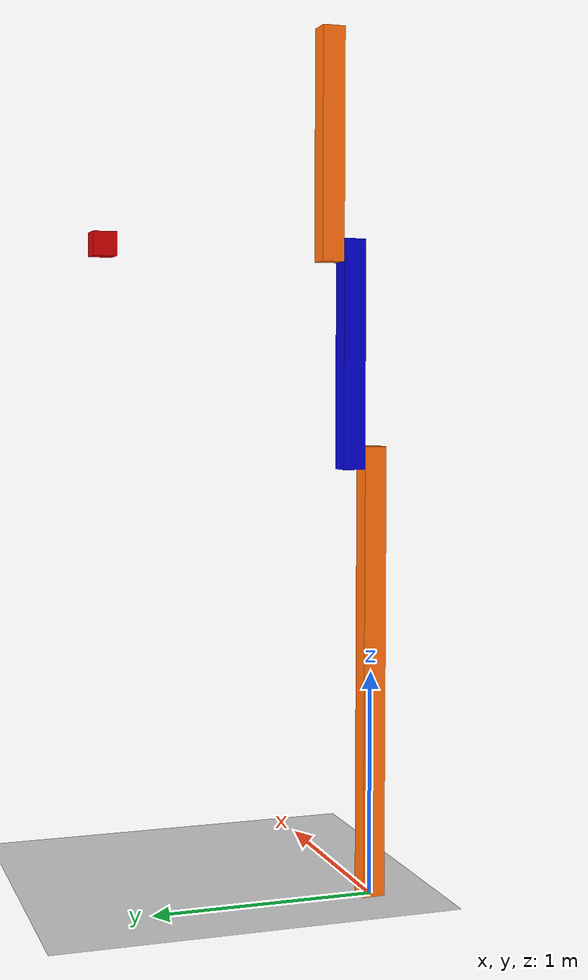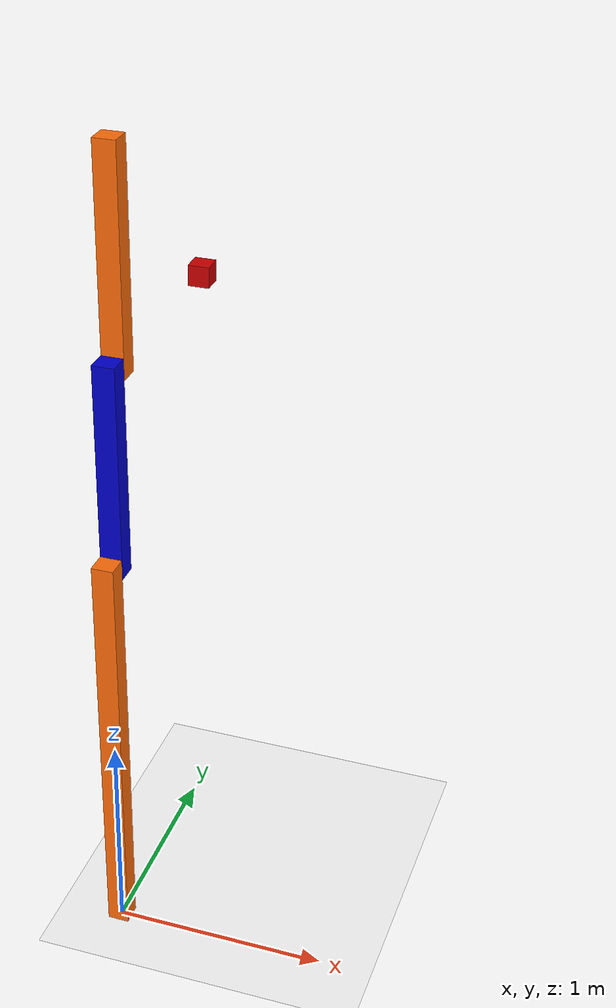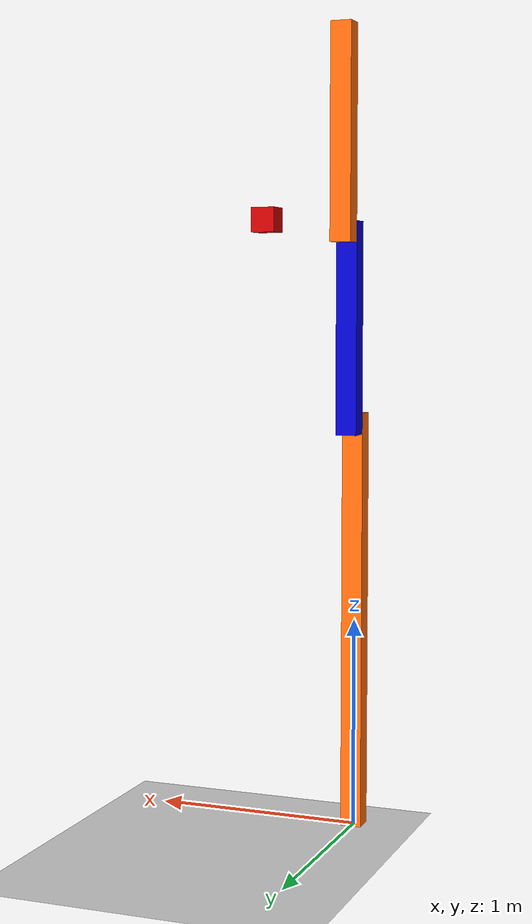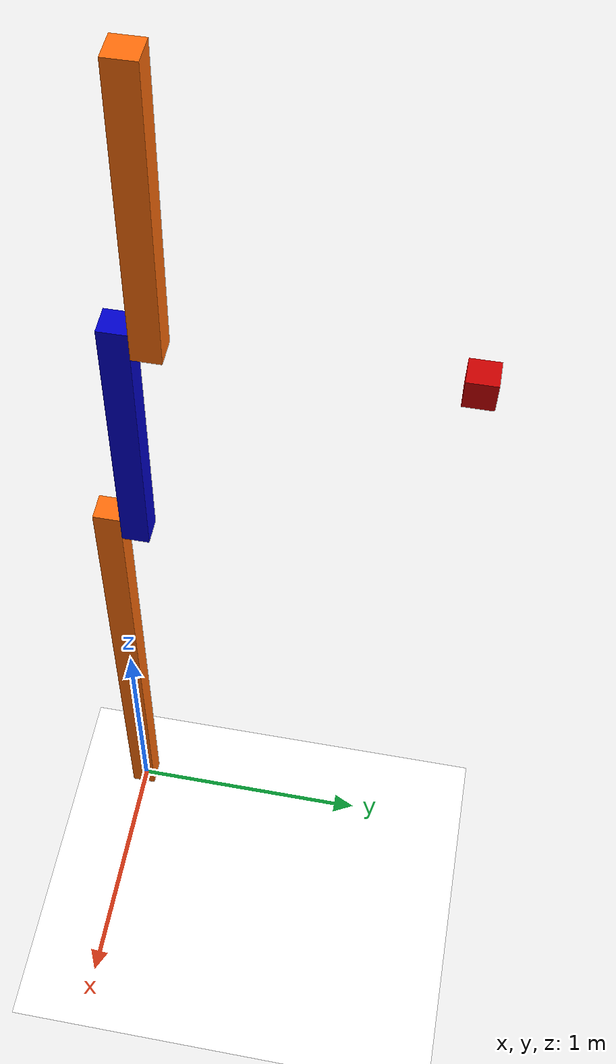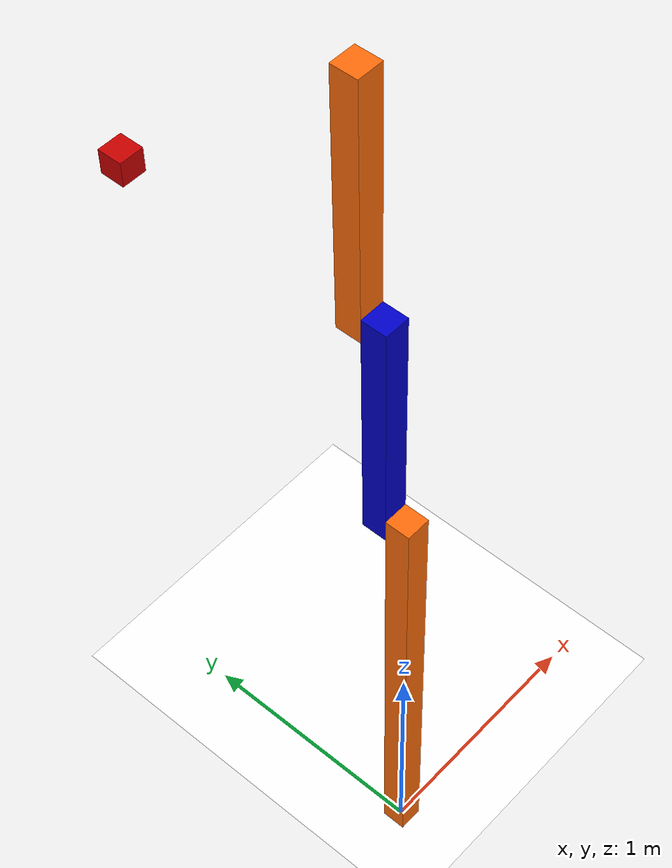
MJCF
<mujoco model="single">
    <option collision="all" timestep="0.001" gravity="0 0 -9.81" cone="elliptic" />
    <compiler angle="radian" />
    <visual>
        <headlight ambient="0.4 0.4 0.4" diffuse="0.4 0.4 0.4" specular="0.0 0.0 0.0" active="1"/>
    </visual>
    <asset>
        <texture builtin="checker" height="512" name="texplane" rgb1=".2 .3 .4" rgb2=".1 .15 .2" type="2d" width="512" />
        <material name="MatPlane" reflectance="0.5" shininess="0.01" specular="0.1" texrepeat="1 1" texture="texplane" texuniform="true" />
        <material name="black" rgba="0.0 0.0 0.0 1.0"/>
        <material name="blue" rgba="0.0 0.0 0.8 1.0"/>
        <material name="green" rgba="0.0 0.8 0.0 1.0"/>
        <material name="grey" rgba="0.2 0.2 0.2 1.0"/>
        <material name="orange" rgba="1.0 0.423529411765 0.0392156862745 1.0"/>
        <material name="brown" rgba="0.870588235294 0.811764705882 0.764705882353 1.0"/>
        <material name="red" rgba="0.8 0.0 0.0 1.0"/>
        <material name="white" rgba="1.0 1.0 1.0 1.0"/>
    </asset>
    <worldbody>
        <geom name="ground_plane" type="plane" size="5 5 0.1" material="MatPlane" rgba="1 1 1 1"/>
        <body name="link1">
            <geom name="link1_geom" pos="0 0 1.0" type="box" size="0.05 0.05 1" material="orange"/>
            <inertial pos="0 0 1.0" mass="1" diaginertia="1.0 1.0 1.0"/>
            <body name="link2" pos="0 0.1 1.95">
                <joint name="joint1" pos="0 0 0" axis="0 1 0" damping="0.7" />
                <geom name="link2_geom" pos="0 0 0.45" type="box" size="0.05 0.05 0.5" material="blue"/>
                <inertial pos="0 0 0.45" mass="1" diaginertia="1.0 1.0 1.0"/>
                <body name="link3" pos="0 0.1 0.9">
                    <joint name="joint2" pos="0 0 0" axis="0 1 0" damping="0.7" />
                    <geom name="link3_geom" pos="0 0 0.45" type="box" size="0.05 0.05 0.5" material="orange"/>
                    <inertial pos="0 0 0.45" mass="1" diaginertia="1.0 1.0 1.0"/>
                    <body name="camera_link" pos="0 1. 0">
                        <camera name="camera1" mode="fixed" fovy="80" euler="-90 0 -90"/>
                        <geom name="camera_link_geom" pos="0 0 0" type="box" size="0.05 0.05 0.05" material="red"/>
                    </body>
                </body>
            </body>
        </body>
    </worldbody>
    <contact>
        <exclude body1="link1" body2="link2" />
        <exclude body1="link2" body2="link3" />
        <exclude body1="link1" body2="link3" />
    </contact>

</mujoco>
